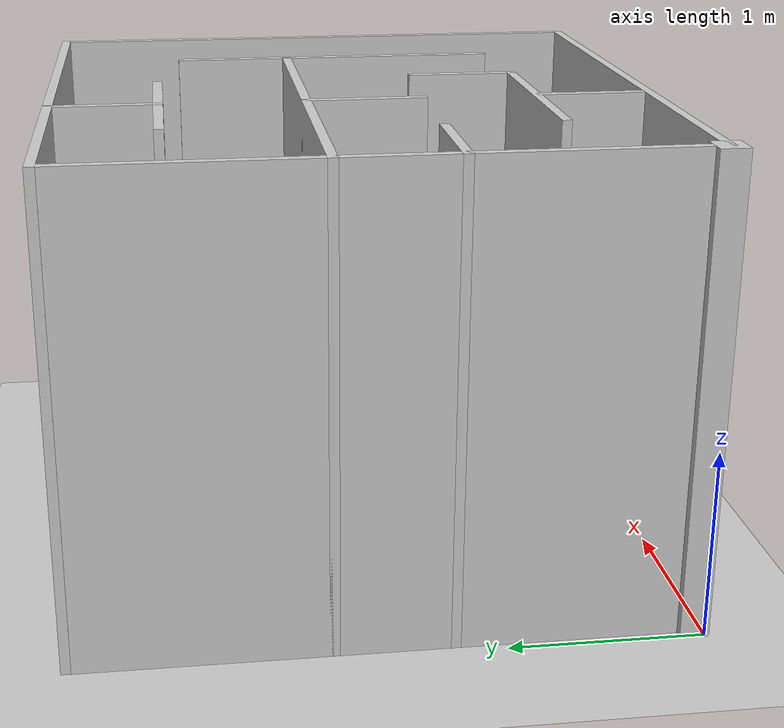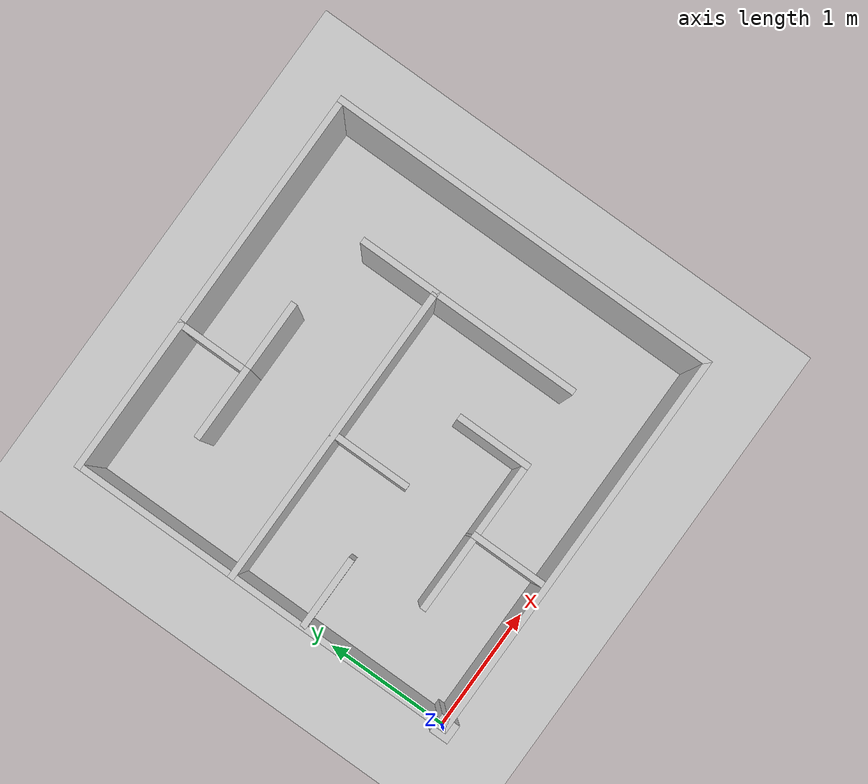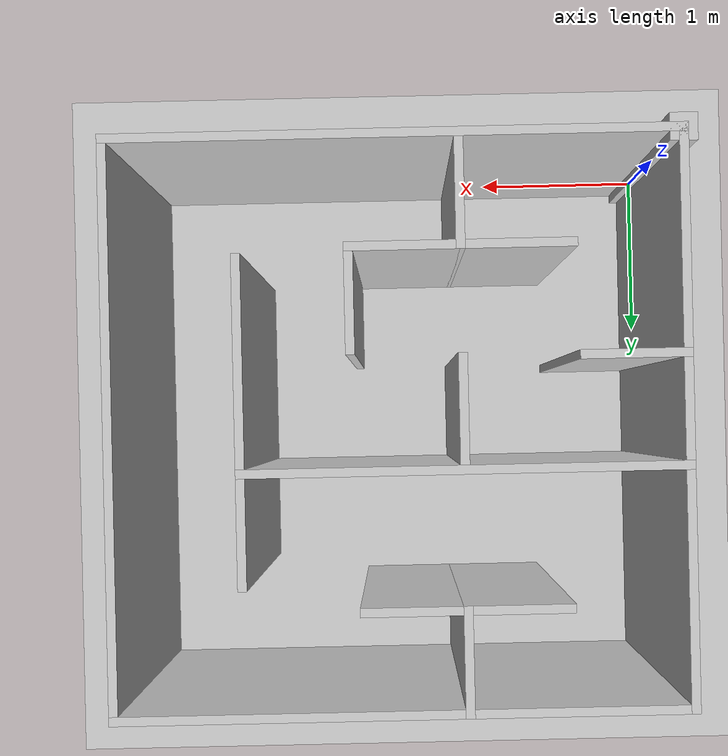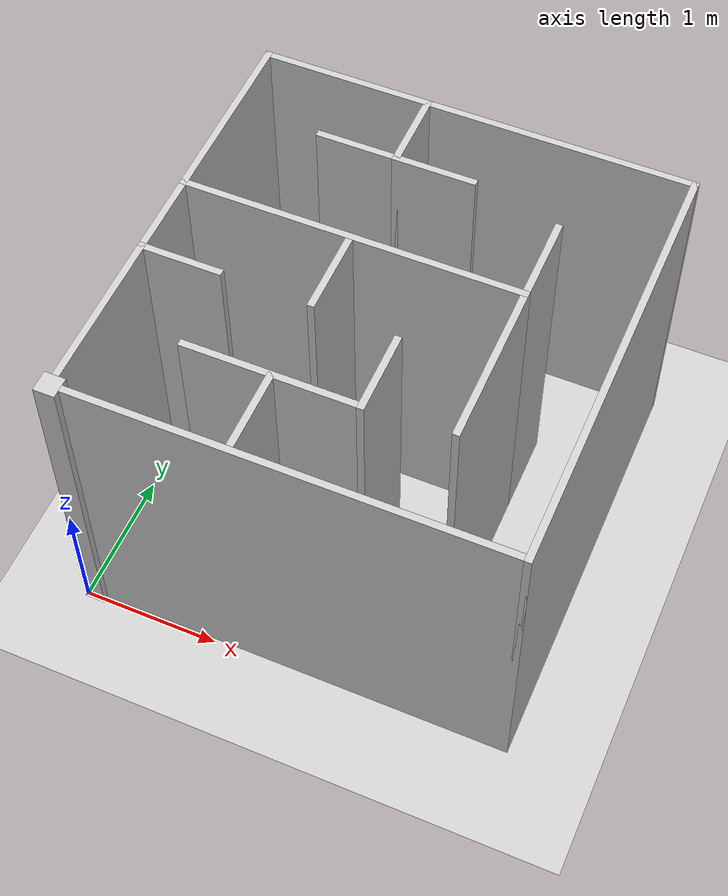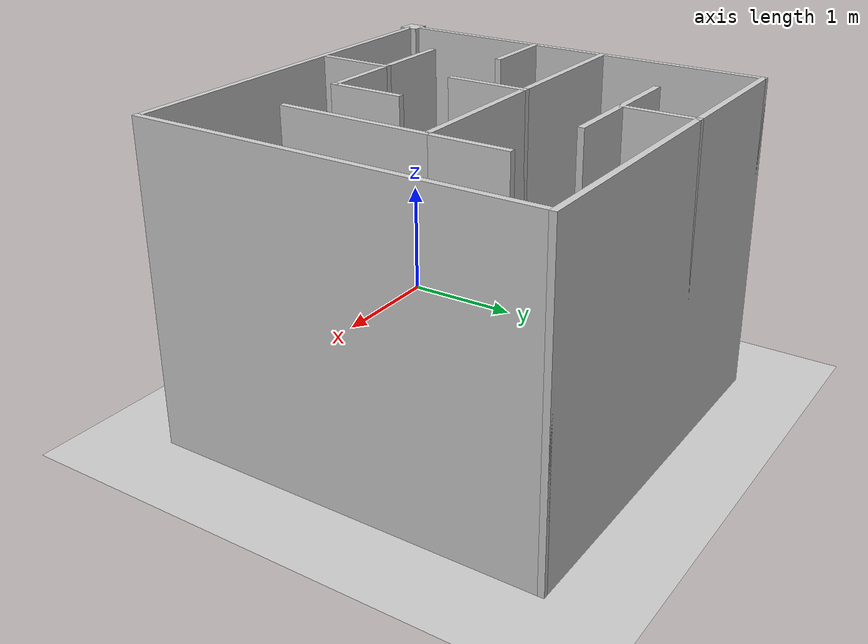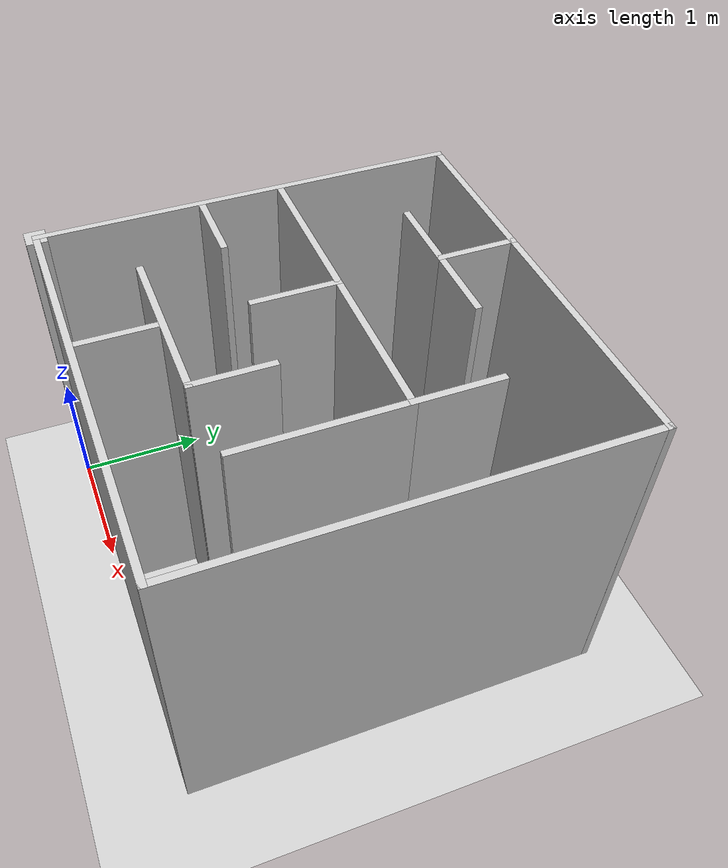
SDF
<?xml version="1.0" encoding="utf-8"?>
<sdf version="1.7">
 <world name="default">
  <light name="sun" type="directional">
   <cast_shadows>
    true
   </cast_shadows>
   <pose>
    0 0 10 0 -0 0
   </pose>
   <diffuse>
    0.8 0.8 0.8 1
   </diffuse>
   <specular>
    0.2 0.2 0.2 1
   </specular>
   <attenuation>
    <range>
     1000
    </range>
    <constant>
     0.9
    </constant>
    <linear>
     0.01
    </linear>
    <quadratic>
     0.001
    </quadratic>
   </attenuation>
   <direction>
    -0.5 0.1 -0.9
   </direction>
  </light>
  <plugin filename="gz-sim-physics-system" name="gz::sim::systems::Physics"/>
  <plugin filename="gz-sim-user-commands-system" name="gz::sim::systems::UserCommands"/>
  <plugin filename="gz-sim-scene-broadcaster-system" name="gz::sim::systems::SceneBroadcaster"/>
  <plugin filename="gz-sim-sensors-system" name="gz::sim::systems::Sensors">
   <render_engine>
    ogre2
   </render_engine>
  </plugin>
  <scene>
   <ambient>
    0.4 0.4 0.4 1
   </ambient>
   <background>
    0.7 0.7 0.7 1
   </background>
   <shadows>
    true
   </shadows>
  </scene>
  <model name="ground_plane">
   <static>
    true
   </static>
   <link name="link">
    <collision name="collision">
     <geometry>
      <plane>
       <normal>
        0 0 1
       </normal>
       <size>
        100 100
       </size>
      </plane>
     </geometry>
     <surface>
      <friction>
       <ode>
        <mu>
         100
        </mu>
        <mu2>
         50
        </mu2>
       </ode>
       <torsional>
        <ode/>
       </torsional>
      </friction>
      <contact>
       <ode/>
      </contact>
     </surface>
     <max_contacts>
      10
     </max_contacts>
    </collision>
    <visual name="visual">
     <cast_shadows>
      false
     </cast_shadows>
     <geometry>
      <plane>
       <normal>
        0 0 1
       </normal>
       <size>
        100 100
       </size>
      </plane>
     </geometry>
     <material>
      <ambient>
       0.8 0.8 0.8 1
      </ambient>
      <diffuse>
       0.8 0.8 0.8 1
      </diffuse>
      <specular>
       0.2 0.2 0.2 1
      </specular>
     </material>
    </visual>
    <self_collide>
     false
    </self_collide>
    <enable_wind>
     false
    </enable_wind>
    <kinematic>
     false
    </kinematic>
   </link>
  </model>
  <!-- Tu modelo directamente embebido -->
  <model name="modulo3_world">
   <pose>
    1.58833 1.57895 0 0 -0 0
   </pose>
   <link name="Wall_0">
    <collision name="Wall_0_Collision">
     <geometry>
      <box>
       <size>
        3.15 0.05 2.5
       </size>
      </box>
     </geometry>
     <pose>
      0 0 1.25 0 -0 0
     </pose>
    </collision>
    <visual name="Wall_0_Visual">
     <pose>
      0 0 1.25 0 -0 0
     </pose>
     <geometry>
      <box>
       <size>
        3.15 0.05 2.5
       </size>
      </box>
     </geometry>
     <material>
      <ambient>
       0.760784 0.662745 0.627451 1
      </ambient>
      <diffuse>
       0.8 0.8 0.8 1
      </diffuse>
      <specular>
       0.2 0.2 0.2 1
      </specular>
     </material>
     <meta>
      <layer>
       0
      </layer>
     </meta>
    </visual>
    <pose>
     0.024899 -1.525 0 0 -0 0
    </pose>
   </link>
   <link name="Wall_12">
    <collision name="Wall_12_Collision">
     <geometry>
      <box>
       <size>
        0.6 0.05 2.5
       </size>
      </box>
     </geometry>
     <pose>
      0 0 1.25 0 -0 0
     </pose>
    </collision>
    <visual name="Wall_12_Visual">
     <pose>
      0 0 1.25 0 -0 0
     </pose>
     <geometry>
      <box>
       <size>
        0.6 0.05 2.5
       </size>
      </box>
     </geometry>
     <material>
      <ambient>
       1 1 1 1
      </ambient>
      <diffuse>
       0.8 0.8 0.8 1
      </diffuse>
      <specular>
       0.2 0.2 0.2 1
      </specular>
     </material>
     <meta>
      <layer>
       0
      </layer>
     </meta>
    </visual>
    <pose>
     -0.325101 1.3 0 0 -0 -1.5708
    </pose>
   </link>
   <link name="Wall_16">
    <collision name="Wall_16_Collision">
     <geometry>
      <box>
       <size>
        0.6 0.05 2.5
       </size>
      </box>
     </geometry>
     <pose>
      0 0 1.25 0 -0 0
     </pose>
    </collision>
    <visual name="Wall_16_Visual">
     <pose>
      0 0 1.25 0 -0 0
     </pose>
     <geometry>
      <box>
       <size>
        0.6 0.05 2.5
       </size>
      </box>
     </geometry>
     <material>
      <ambient>
       1 1 1 1
      </ambient>
      <diffuse>
       0.8 0.8 0.8 1
      </diffuse>
      <specular>
       0.2 0.2 0.2 1
      </specular>
     </material>
     <meta>
      <layer>
       0
      </layer>
     </meta>
    </visual>
    <pose>
     -0.050101 1.025 0 0 -0 0
    </pose>
   </link>
   <link name="Wall_18">
    <collision name="Wall_18_Collision">
     <geometry>
      <box>
       <size>
        0.6 0.05 2.5
       </size>
      </box>
     </geometry>
     <pose>
      0 0 1.25 0 -0 0
     </pose>
    </collision>
    <visual name="Wall_18_Visual">
     <pose>
      0 0 1.25 0 -0 0
     </pose>
     <geometry>
      <box>
       <size>
        0.6 0.05 2.5
       </size>
      </box>
     </geometry>
     <material>
      <ambient>
       1 1 1 1
      </ambient>
      <diffuse>
       0.8 0.8 0.8 1
      </diffuse>
      <specular>
       0.2 0.2 0.2 1
      </specular>
     </material>
     <meta>
      <layer>
       0
      </layer>
     </meta>
    </visual>
    <pose>
     -0.600101 1.025 0 0 -0 3.14159
    </pose>
   </link>
   <link name="Wall_20">
    <collision name="Wall_20_Collision">
     <geometry>
      <box>
       <size>
        2.45 0.05 2.5
       </size>
      </box>
     </geometry>
     <pose>
      0 0 1.25 0 -0 0
     </pose>
    </collision>
    <visual name="Wall_20_Visual">
     <pose>
      0 0 1.25 0 -0 0
     </pose>
     <geometry>
      <box>
       <size>
        2.45 0.05 2.5
       </size>
      </box>
     </geometry>
     <material>
      <ambient>
       1 1 1 1
      </ambient>
      <diffuse>
       0.8 0.8 0.8 1
      </diffuse>
      <specular>
       0.2 0.2 0.2 1
      </specular>
     </material>
     <meta>
      <layer>
       0
      </layer>
     </meta>
    </visual>
    <pose>
     -0.325101 0.275 0 0 -0 0
    </pose>
   </link>
   <link name="Wall_22">
    <collision name="Wall_22_Collision">
     <geometry>
      <box>
       <size>
        0.65 0.05 2.5
       </size>
      </box>
     </geometry>
     <pose>
      0 0 1.25 0 -0 0
     </pose>
    </collision>
    <visual name="Wall_22_Visual">
     <pose>
      0 0 1.25 0 -0 0
     </pose>
     <geometry>
      <box>
       <size>
        0.65 0.05 2.5
       </size>
      </box>
     </geometry>
     <material>
      <ambient>
       1 1 1 1
      </ambient>
      <diffuse>
       0.8 0.8 0.8 1
      </diffuse>
      <specular>
       0.2 0.2 0.2 1
      </specular>
     </material>
     <meta>
      <layer>
       0
      </layer>
     </meta>
    </visual>
    <pose>
     0.874899 0.575 0 0 -0 1.5708
    </pose>
   </link>
   <link name="Wall_24">
    <collision name="Wall_24_Collision">
     <geometry>
      <box>
       <size>
        1.2 0.05 2.5
       </size>
      </box>
     </geometry>
     <pose>
      0 0 1.25 0 -0 0
     </pose>
    </collision>
    <visual name="Wall_24_Visual">
     <pose>
      0 0 1.25 0 -0 0
     </pose>
     <geometry>
      <box>
       <size>
        1.2 0.05 2.5
       </size>
      </box>
     </geometry>
     <material>
      <ambient>
       1 1 1 1
      </ambient>
      <diffuse>
       0.8 0.8 0.8 1
      </diffuse>
      <specular>
       0.2 0.2 0.2 1
      </specular>
     </material>
     <meta>
      <layer>
       0
      </layer>
     </meta>
    </visual>
    <pose>
     0.874899 -0.3 0 0 -0 -1.5708
    </pose>
   </link>
   <link name="Wall_26">
    <collision name="Wall_26_Collision">
     <geometry>
      <box>
       <size>
        0.6 0.05 2.5
       </size>
      </box>
     </geometry>
     <pose>
      0 0 1.25 0 -0 0
     </pose>
    </collision>
    <visual name="Wall_26_Visual">
     <pose>
      0 0 1.25 0 -0 0
     </pose>
     <geometry>
      <box>
       <size>
        0.6 0.05 2.5
       </size>
      </box>
     </geometry>
     <material>
      <ambient>
       1 1 1 1
      </ambient>
      <diffuse>
       0.8 0.8 0.8 1
      </diffuse>
      <specular>
       0.2 0.2 0.2 1
      </specular>
     </material>
     <meta>
      <layer>
       0
      </layer>
     </meta>
    </visual>
    <pose>
     -1.2501 -0.325 0 0 -0 0
    </pose>
   </link>
   <link name="Wall_3">
    <collision name="Wall_3_Collision">
     <geometry>
      <box>
       <size>
        0.15 0.15 2.5
       </size>
      </box>
     </geometry>
     <pose>
      0 0 1.25 0 -0 0
     </pose>
    </collision>
    <visual name="Wall_3_Visual">
     <pose>
      0 0 1.25 0 -0 0
     </pose>
     <geometry>
      <box>
       <size>
        0.15 0.15 2.5
       </size>
      </box>
     </geometry>
     <material>
      <ambient>
       1 1 1 1
      </ambient>
      <diffuse>
       0.8 0.8 0.8 1
      </diffuse>
      <specular>
       0.2 0.2 0.2 1
      </specular>
     </material>
     <meta>
      <layer>
       0
      </layer>
     </meta>
    </visual>
    <pose>
     -1.5251 -1.525 0 0 -0 0
    </pose>
   </link>
   <link name="Wall_30">
    <collision name="Wall_30_Collision">
     <geometry>
      <box>
       <size>
        0.6 0.05 2.5
       </size>
      </box>
     </geometry>
     <pose>
      0 0 1.25 0 -0 0
     </pose>
    </collision>
    <visual name="Wall_30_Visual">
     <pose>
      0 0 1.25 0 -0 0
     </pose>
     <geometry>
      <box>
       <size>
        0.6 0.05 2.5
       </size>
      </box>
     </geometry>
     <material>
      <ambient>
       1 1 1 1
      </ambient>
      <diffuse>
       0.8 0.8 0.8 1
      </diffuse>
      <specular>
       0.2 0.2 0.2 1
      </specular>
     </material>
     <meta>
      <layer>
       0
      </layer>
     </meta>
    </visual>
    <pose>
     -0.325101 -1.2 0 0 -0 -1.5708
    </pose>
   </link>
   <link name="Wall_32">
    <collision name="Wall_32_Collision">
     <geometry>
      <box>
       <size>
        1.25 0.05 2.5
       </size>
      </box>
     </geometry>
     <pose>
      0 0 1.25 0 -0 0
     </pose>
    </collision>
    <visual name="Wall_32_Visual">
     <pose>
      0 0 1.25 0 -0 0
     </pose>
     <geometry>
      <box>
       <size>
        1.25 0.05 2.5
       </size>
      </box>
     </geometry>
     <material>
      <ambient>
       1 1 1 1
      </ambient>
      <diffuse>
       0.8 0.8 0.8 1
      </diffuse>
      <specular>
       0.2 0.2 0.2 1
      </specular>
     </material>
     <meta>
      <layer>
       0
      </layer>
     </meta>
    </visual>
    <pose>
     -0.325101 -0.925 0 0 -0 0
    </pose>
   </link>
   <link name="Wall_34">
    <collision name="Wall_34_Collision">
     <geometry>
      <box>
       <size>
        0.6 0.05 2.5
       </size>
      </box>
     </geometry>
     <pose>
      0 0 1.25 0 -0 0
     </pose>
    </collision>
    <visual name="Wall_34_Visual">
     <pose>
      0 0 1.25 0 -0 0
     </pose>
     <geometry>
      <box>
       <size>
        0.6 0.05 2.5
       </size>
      </box>
     </geometry>
     <material>
      <ambient>
       1 1 1 1
      </ambient>
      <diffuse>
       0.8 0.8 0.8 1
      </diffuse>
      <specular>
       0.2 0.2 0.2 1
      </specular>
     </material>
     <meta>
      <layer>
       0
      </layer>
     </meta>
    </visual>
    <pose>
     0.274899 -0.65 0 0 -0 1.5708
    </pose>
   </link>
   <link name="Wall_36">
    <collision name="Wall_36_Collision">
     <geometry>
      <box>
       <size>
        0.65 0.05 2.5
       </size>
      </box>
     </geometry>
     <pose>
      0 0 1.25 0 -0 0
     </pose>
    </collision>
    <visual name="Wall_36_Visual">
     <pose>
      0 0 1.25 0 -0 0
     </pose>
     <geometry>
      <box>
       <size>
        0.65 0.05 2.5
       </size>
      </box>
     </geometry>
     <material>
      <ambient>
       1 1 1 1
      </ambient>
      <diffuse>
       0.8 0.8 0.8 1
      </diffuse>
      <specular>
       0.2 0.2 0.2 1
      </specular>
     </material>
     <meta>
      <layer>
       0
      </layer>
     </meta>
    </visual>
    <pose>
     -0.325101 -0.025 0 0 -0 -1.5708
    </pose>
   </link>
   <link name="Wall_5">
    <collision name="Wall_5_Collision">
     <geometry>
      <box>
       <size>
        3.15 0.05 2.5
       </size>
      </box>
     </geometry>
     <pose>
      0 0 1.25 0 -0 0
     </pose>
    </collision>
    <visual name="Wall_5_Visual">
     <pose>
      0 0 1.25 0 -0 0
     </pose>
     <geometry>
      <box>
       <size>
        3.15 0.05 2.5
       </size>
      </box>
     </geometry>
     <material>
      <ambient>
       0.760784 0.662745 0.627451 1
      </ambient>
      <diffuse>
       0.8 0.8 0.8 1
      </diffuse>
      <specular>
       0.2 0.2 0.2 1
      </specular>
     </material>
     <meta>
      <layer>
       0
      </layer>
     </meta>
    </visual>
    <pose>
     -1.5251 0.025 0 0 -0 1.5708
    </pose>
   </link>
   <link name="Wall_7">
    <collision name="Wall_7_Collision">
     <geometry>
      <box>
       <size>
        3.1504 0.05 2.5
       </size>
      </box>
     </geometry>
     <pose>
      0 0 1.25 0 -0 0
     </pose>
    </collision>
    <visual name="Wall_7_Visual">
     <pose>
      0 0 1.25 0 -0 0
     </pose>
     <geometry>
      <box>
       <size>
        3.1504 0.05 2.5
       </size>
      </box>
     </geometry>
     <material>
      <ambient>
       1 1 1 1
      </ambient>
      <diffuse>
       0.8 0.8 0.8 1
      </diffuse>
      <specular>
       0.2 0.2 0.2 1
      </specular>
     </material>
     <meta>
      <layer>
       0
      </layer>
     </meta>
    </visual>
    <pose>
     0.024899 1.575 0 0 -0 0
    </pose>
   </link>
   <link name="Wall_9">
    <collision name="Wall_9_Collision">
     <geometry>
      <box>
       <size>
        3.15 0.05 2.5
       </size>
      </box>
     </geometry>
     <pose>
      0 0 1.25 0 -0 0
     </pose>
    </collision>
    <visual name="Wall_9_Visual">
     <pose>
      0 0 1.25 0 -0 0
     </pose>
     <geometry>
      <box>
       <size>
        3.15 0.05 2.5
       </size>
      </box>
     </geometry>
     <material>
      <ambient>
       1 1 1 1
      </ambient>
      <diffuse>
       0.8 0.8 0.8 1
      </diffuse>
      <specular>
       0.2 0.2 0.2 1
      </specular>
     </material>
     <meta>
      <layer>
       0
      </layer>
     </meta>
    </visual>
    <pose>
     1.5749 0.025 0 0 -0 1.5708
    </pose>
   </link>
   <static>
    1
   </static>
  </model>
  <gravity>
   0 0 -9.8
  </gravity>
  <magnetic_field>
   6e-06 2.3e-05 -4.2e-05
  </magnetic_field>
  <atmosphere type="adiabatic"/>
  <physics type="ode">
   <max_step_size>
    0.001
   </max_step_size>
   <real_time_factor>
    1.0
   </real_time_factor>
   <real_time_update_rate>
    1000
   </real_time_update_rate>
  </physics>
  <audio>
   <device>
    default
   </device>
  </audio>
  <wind/>
  <spherical_coordinates>
   <surface_model>
    EARTH_WGS84
   </surface_model>
   <latitude_deg>
    0
   </latitude_deg>
   <longitude_deg>
    0
   </longitude_deg>
   <elevation>
    0
   </elevation>
   <heading_deg>
    0
   </heading_deg>
  </spherical_coordinates>
  <gui fullscreen="0">
   <camera name="user_camera">
    <pose>
     2.0 2.0 10.0 0 1.0 -2.0
    </pose>
    <view_controller>
     orbit
    </view_controller>
    <projection_type>
     perspective
    </projection_type>
   </camera>
  </gui>
 </world>
</sdf>
